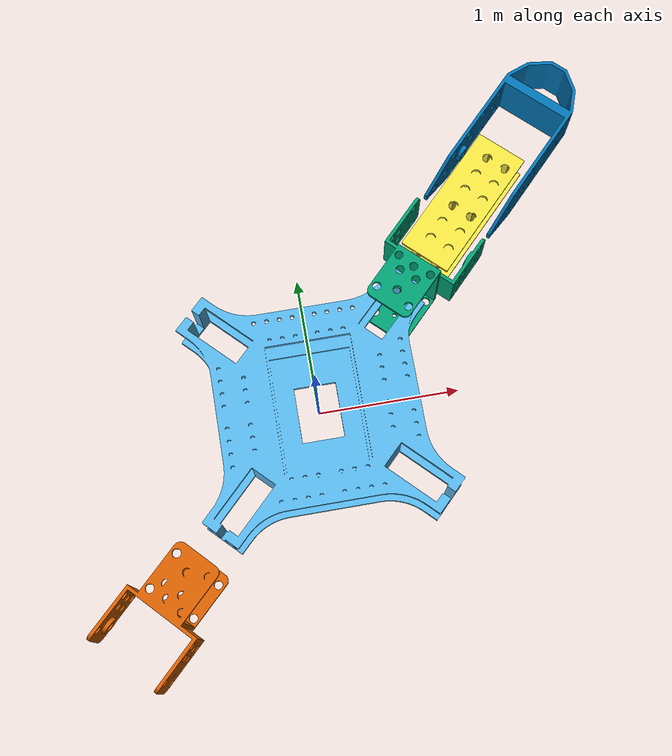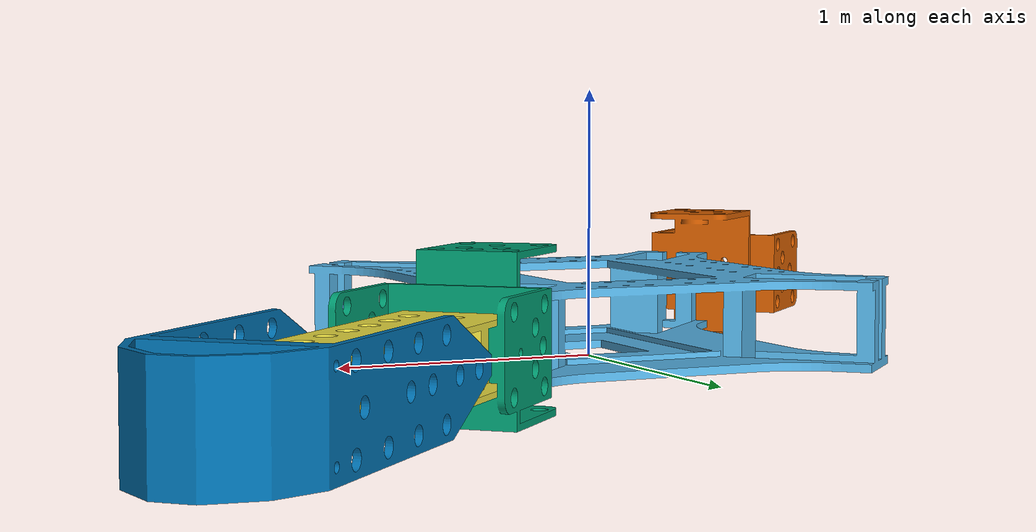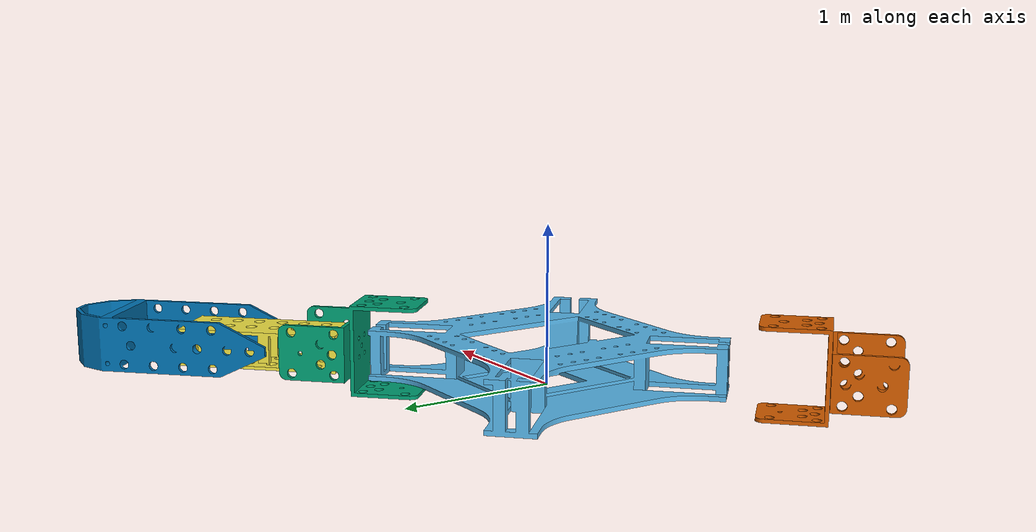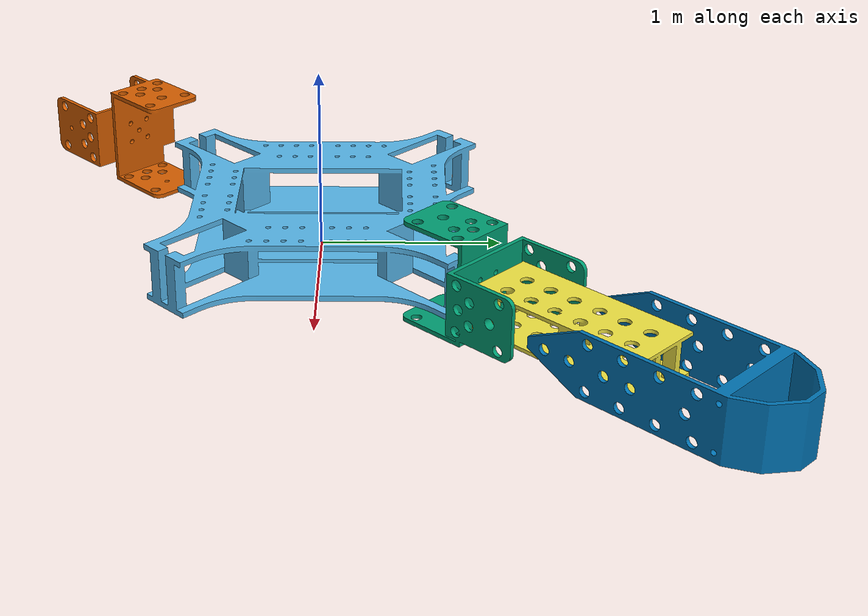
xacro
<?xml version="1.0"?>
<robot xmlns:xacro="http://www.ros.org/wiki/xacro" name="arduinobot">
    <!-- Useful Variables (Properties) -->
    <xacro:property name="PI" value="3.14159265359" />
    <xacro:property name="effort" value="30" />
    <xacro:property name="velocity" value="10" />

    <!-- Useful Macros -->
    <xacro:macro name="default_inertial" params="mass">
        <inertial>
            <mass value="${mass}" />
            <inertia ixx="1.0" ixy="0.0" ixz="0.0"
                     iyy="1.0" iyz="0.0"
                     izz="1.0" />
        </inertial>
    </xacro:macro>
    <xacro:macro name="default_transmission" params="number">
        <transmission name="transmission_${number}">
            <type>transmission_interface/SimpleTransmission</type>
            <joint name="joint_${number}">
                <hardwareInterface>hardware_interface/PositionJointInterface</hardwareInterface>
            </joint>
            <actuator name="motor_${number}">
                <hardwareInterface>hardware_interface/PositionJointInterface</hardwareInterface>
                <mechanicalReduction>1</mechanicalReduction>
            </actuator>
        </transmission>
    </xacro:macro>

    <!-- Links -->
    <link name="world"/>

    <link name="body">
        <visual>
            <origin rpy="1.57 0 0" xyz="0 0 0"/>
            <geometry>
                <mesh filename="package://spiderrobot_description/mesh/BodyCom.stl" scale="0.01 0.01 0.01"/>
            </geometry>
        </visual>
    </link>

    <!-- LEG 1 -->
    <link name="spalla_fl">
        <visual>
            <origin rpy="0 1.57 0.8" xyz="0.315 0.065 0"/>
            <geometry>
                <mesh filename="package://spiderrobot_description/mesh/SpallaCom.stl" scale="0.01 0.01 0.01"/>
            </geometry>
        </visual>
    </link>

    <link name="braccio_fl">
        <visual>
            <origin rpy="0 0 0" xyz="-0.2 -0.15 0.18"/>
            <geometry>
                <mesh filename="package://spiderrobot_description/mesh/Braccio.stl" scale="0.01 0.01 0.01"/>
            </geometry>
        </visual>
    </link>

    <link name="zampa_fl">
        <visual>
            <origin rpy="0 0 0" xyz="-0.93 -0.2 0.25"/>
            <geometry>
                <mesh filename="package://spiderrobot_description/mesh/Zampa.stl" scale="0.01 0.01 0.01"/>
            </geometry>
        </visual>
    </link>

    <!-- LEG 2 -->
    <link name="spalla_fr">
        <visual>
            <origin rpy="0 1.57 -2.37" xyz="-0.66 -0.4 0.45"/>
            <geometry>
                <mesh filename="package://spiderrobot_description/mesh/SpallaCom.stl" scale="0.01 0.01 0.01"/>
            </geometry>
        </visual>
    </link>

    <!-- Joints -->
    <joint name="joint_body" type="fixed">
        <parent link="world"/>
        <child link="body"/>
        <origin xyz="0 0 0" rpy="0 0 0"/>
    </joint>

<!-- LEG 1 -->
    <joint name="joint_1" type="revolute">
        <parent link="body"/>
        <child link="spalla_fl"/>
        <origin xyz="0.655 0.655 0.45"/>
        <axis xyz="0 0 1"/>
        <limit lower="-${PI/2}" upper="${PI/2}" effort="${effort}" velocity="${velocity}"/>
    </joint>

    <joint name="joint_2" type="revolute">
        <parent link="spalla_fl"/>
        <child link="braccio_fl"/>
        <origin xyz="0.41 0.41 -0.257" rpy="1.57 0 0.8"/>
        <axis xyz="0 0 1"/>
        <limit lower="-${PI/1.7}" upper="${PI/1.7}" effort="${effort}" velocity="${velocity}"/>
    </joint>

    <joint name="joint_3" type="revolute">
        <parent link="braccio_fl"/>
        <child link="zampa_fl"/>
        <origin xyz="0.65 -0.04 0" rpy="0 0 3.14"/>
        <axis xyz="0 0 1"/>
        <limit lower="-${PI/1.5}" upper="${PI/1.5}" effort="${effort}" velocity="${velocity}"/>
    </joint>

<!-- LEG 2 -->
    <joint name="joint_4" type="revolute">
        <parent link="body"/>
        <child link="spalla_fr"/>
        <origin xyz="-0.655 -0.655 0"/>
        <axis xyz="0 0 1"/>
        <limit lower="-${PI/2}" upper="${PI/2}" effort="${effort}" velocity="${velocity}"/>
    </joint>

</robot>
